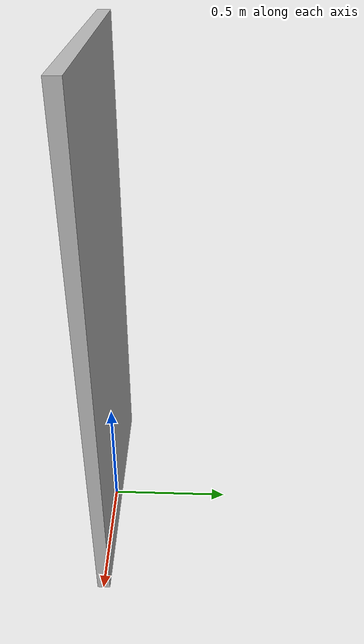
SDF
<?xml version="1.0" ?>
<sdf version="1.6">
  <model name="tue.library/door">
    <link name="1">
      <collision name="1">
        <geometry>
          <box>
            <size>1.0 0.05 2.0</size>
          </box>
        </geometry>
        <name>1</name>
      </collision>
      <visual name="1">
        <geometry>
          <box>
            <size>1.0 0.05 2.0</size>
          </box>
        </geometry>
        <name>1</name>
      </visual>
      <pose>0 0 1.0 0 0 0</pose>
      <name>1</name>
    </link>
    <static>true</static>
    <name>tue.library/door</name>
  </model>
</sdf>
